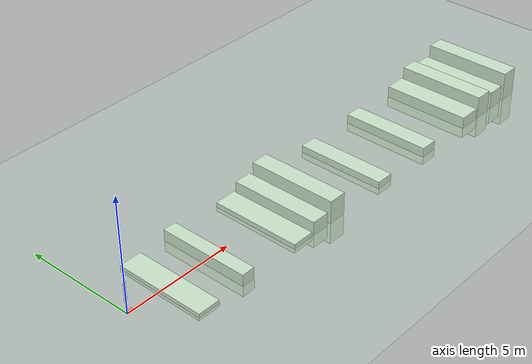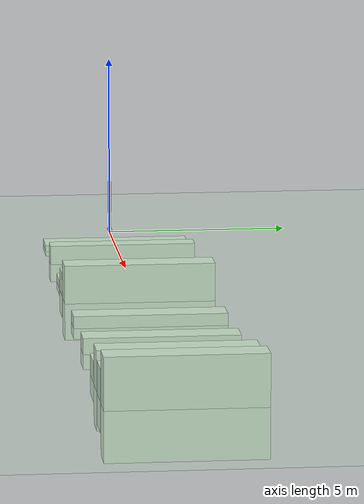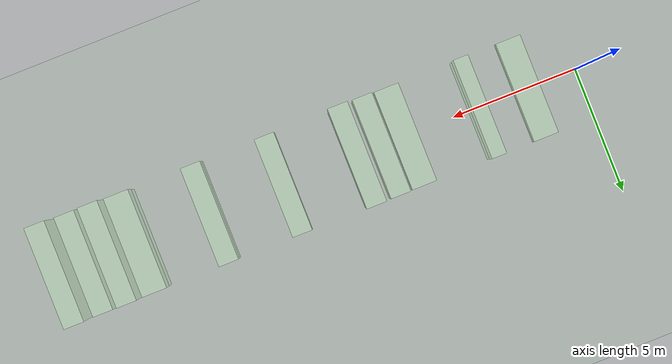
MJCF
<!--
Walker2D model for `Walker2d-v5`, based on openai/gym/Walker2d
modified by @kallinteris-Andreas
  - To not require `coordinate="global"`
  - Set feet friction to 1.9
-->
<mujoco model="walker2d">
  <compiler angle="degree" inertiafromgeom="true"/>
  <default>
    <joint armature="0.01" damping=".1" limited="true"/>
    <geom conaffinity="0" condim="3" contype="1" density="1000" friction=".7 .1 .1" rgba="0.8 0.6 .4 1"/>
  </default>
  <option integrator="RK4" timestep="0.002"/>
  <worldbody>
    <light cutoff="100" diffuse="1 1 1" dir="-0 0 -1.3" directional="true" exponent="1" pos="0 0 1.3" specular=".1 .1 .1"/>

    <geom conaffinity="1" condim="3" name="floor" pos="0 0 0" rgba="0.8 0.9 0.8 1" size="40 40 40" type="plane" material="MatPlane"/>

    <!-- 8 bumps -->
    <geom conaffinity="1" condim="3" name="bump1" pos="2 0 0" size="0.5 2 0.15" type="box" rgba="0.8 0.9 0.8 1" material="MatPlane"/>
    <geom conaffinity="1" condim="3" name="bump2" pos="4 0 0" size="0.3 2 0.5" type="box" rgba="0.8 0.9 0.8 1" material="MatPlane"/>
    <geom conaffinity="1" condim="3" name="bump3" pos="7 0 0" size="0.5 2 0.2" type="box" rgba="0.8 0.9 0.8 1" material="MatPlane"/>
    <geom conaffinity="1" condim="3" name="bump4" pos="8 0 0" size="0.4 2 0.6" type="box" rgba="0.8 0.9 0.8 1" material="MatPlane"/>
    <geom conaffinity="1" condim="3" name="bump5" pos="9 0 0" size="0.4 2 1.0" type="box" rgba="0.8 0.9 0.8 1" material="MatPlane"/>
    <geom conaffinity="1" condim="3" name="bump6" pos="12 0 0" size="0.4 2 0.3" type="box" rgba="0.8 0.9 0.8 1" material="MatPlane"/>
    <geom conaffinity="1" condim="3" name="bump7" pos="15 0 0" size="0.4 2 0.4" type="box" rgba="0.8 0.9 0.8 1" material="MatPlane"/>
    <geom conaffinity="1" condim="3" name="bump8" pos="18 0 0" size="0.5 2 0.50" type="box" rgba="0.8 0.9 0.8 1" material="MatPlane"/>
    <geom conaffinity="1" condim="3" name="bump9" pos="19 0 0" size="0.4 2 1.00" type="box" rgba="0.8 0.9 0.8 1" material="MatPlane"/>
    <geom conaffinity="1" condim="3" name="bump10" pos="20 0 0" size="0.4 2 0.80" type="box" rgba="0.8 0.9 0.8 1" material="MatPlane"/>
    <geom conaffinity="1" condim="3" name="bump11" pos="21 0 0" size="0.4 2 1.30" type="box" rgba="0.8 0.9 0.8 1" material="MatPlane"/>

    <body name="torso" pos="0 0 1.25">
      <camera name="track" mode="trackcom" pos="0 -3 -0.25" xyaxes="1 0 0 0 0 1"/>
      <joint armature="0" axis="1 0 0" damping="0" limited="false" name="rootx" pos="0 0 -1.25" stiffness="0" type="slide"/>
      <joint armature="0" axis="0 0 1" damping="0" limited="false" name="rootz" pos="0 0 -1.25" ref="1.25" stiffness="0" type="slide"/>
      <joint armature="0" axis="0 1 0" damping="0" limited="false" name="rooty" pos="0 0 0" stiffness="0" type="hinge"/>
      <geom friction="0.9" name="torso_geom" size="0.050000000000000003 0.19999999999999996" type="capsule"/>
      <body name="thigh" pos="0 0 -0.19999999999999996">
        <joint axis="0 -1 0" name="thigh_joint" pos="0 0 0" range="-150 0" type="hinge"/>
        <geom friction="0.9" pos="0 0 -0.22500000000000009" name="thigh_geom" size="0.050000000000000003 0.22500000000000003" type="capsule"/>
        <body name="leg" pos="0 0 -0.70000000000000007">
          <joint axis="0 -1 0" name="leg_joint" pos="0 0 0.25" range="-150 0" type="hinge"/>
          <geom friction="0.9" name="leg_geom" size="0.040000000000000001 0.25" type="capsule"/>
          <body name="foot" pos="0.20000000000000001 0 -0.34999999999999998">
            <joint axis="0 -1 0" name="foot_joint" pos="-0.20000000000000001 0 0.10000000000000001" range="-45 45" type="hinge"/>
            <geom friction="1.9" pos="-0.10000000000000001 0 0.10000000000000001" quat="0.70710678118654757 0 -0.70710678118654746 0" name="foot_geom" size="0.059999999999999998 0.10000000000000001" type="capsule"/>
          </body>
        </body>
      </body>
      <!-- copied and then replace thigh->thigh_left, leg->leg_left, foot->foot_right -->
      <body name="thigh_left" pos="0 0 -0.19999999999999996">
        <joint axis="0 -1 0" name="thigh_left_joint" pos="0 0 0" range="-150 0" type="hinge"/>
        <geom friction="0.9" name="thigh_left_geom" rgba=".7 .3 .6 1" size="0.050000000000000003 0.22500000000000003" pos="0 0 -0.22500000000000009" type="capsule"/>
        <body name="leg_left" pos="0 0 -0.70000000000000007">
          <joint axis="0 -1 0" name="leg_left_joint" pos="0 0 0.25" range="-150 0" type="hinge"/>
          <geom friction="0.9" name="leg_left_geom" rgba=".7 .3 .6 1" size="0.040000000000000001 0.25" type="capsule"/>
          <body name="foot_left" pos="0.20000000000000001 0 -0.34999999999999998">
            <joint axis="0 -1 0" name="foot_left_joint" pos="-0.20000000000000001 0 0.10000000000000001" range="-45 45" type="hinge"/>
            <geom friction="1.9" name="foot_left_geom" rgba=".7 .3 .6 1" size="0.059999999999999998 0.10000000000000001" pos="-0.10000000000000001 0 0.10000000000000001" type="capsule" quat="0.70710678118654757 0 -0.70710678118654746 0"/>
          </body>
        </body>
      </body>
    </body>
  </worldbody>
  <actuator>
    <motor ctrllimited="true" ctrlrange="-1.0 1.0" gear="100" joint="thigh_joint"/>
    <motor ctrllimited="true" ctrlrange="-1.0 1.0" gear="100" joint="leg_joint"/>
    <motor ctrllimited="true" ctrlrange="-1.0 1.0" gear="100" joint="foot_joint"/>
    <motor ctrllimited="true" ctrlrange="-1.0 1.0" gear="100" joint="thigh_left_joint"/>
    <motor ctrllimited="true" ctrlrange="-1.0 1.0" gear="100" joint="leg_left_joint"/>
    <motor ctrllimited="true" ctrlrange="-1.0 1.0" gear="100" joint="foot_left_joint"/>
  </actuator>
    <asset>
        <texture type="skybox" builtin="gradient" rgb1=".4 .5 .6" rgb2="0 0 0"
            width="100" height="100"/>
        <texture builtin="flat" height="1278" mark="cross" markrgb="1 1 1" name="texgeom" random="0.01" rgb1="0.8 0.6 0.4" rgb2="0.8 0.6 0.4" type="cube" width="127"/>
        <texture builtin="checker" height="100" name="texplane" rgb1="0.3 0.3 0.3" rgb2="0.8 0.8 0.8" type="2d" width="100"/>
        <material name="MatPlane" reflectance="0.5" shininess="1" specular="1" texrepeat="60 60" texture="texplane"/>
        <material name="geom" texture="texgeom" texuniform="true"/>
    </asset>
</mujoco>
